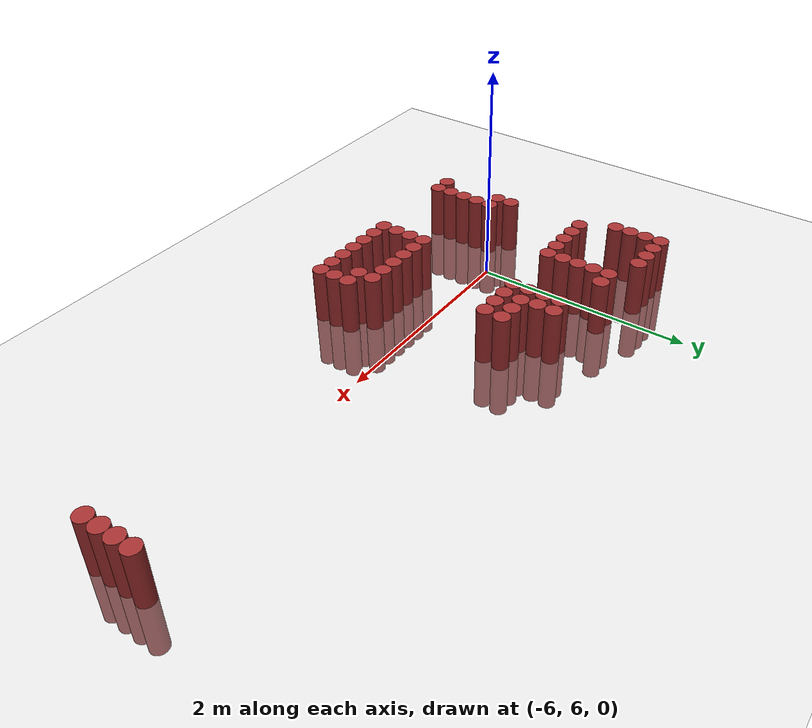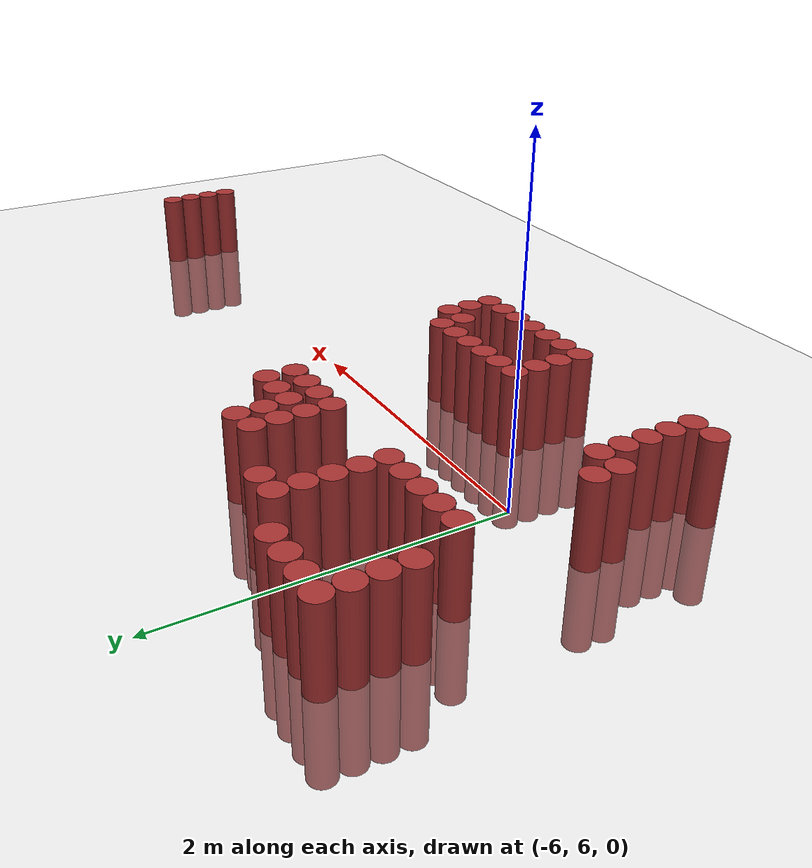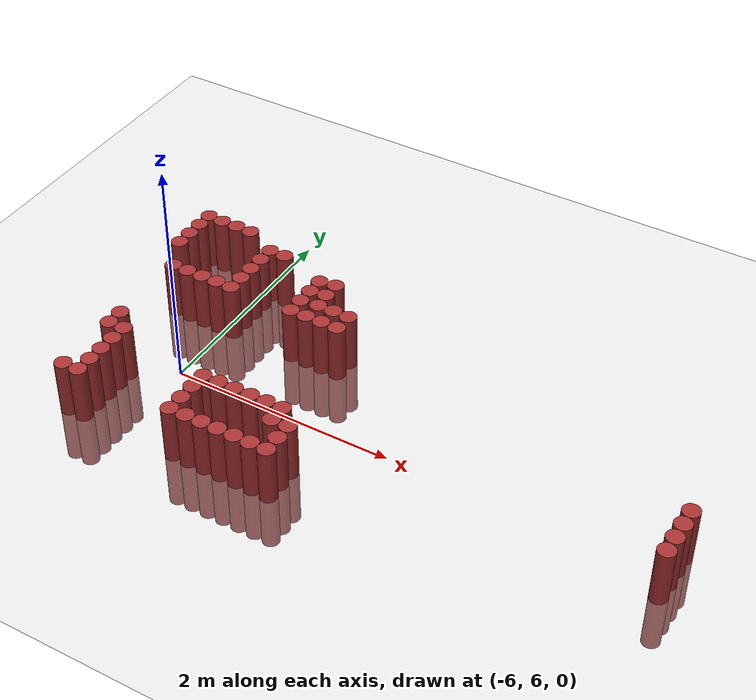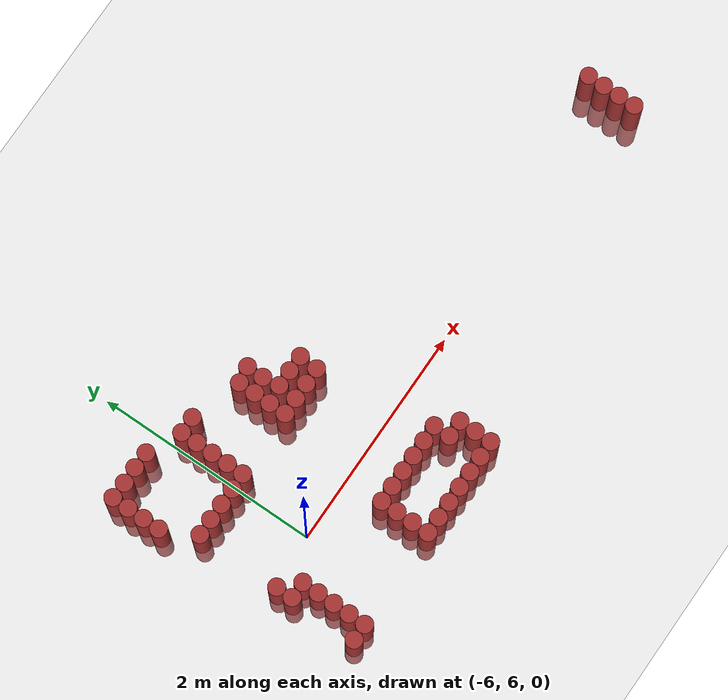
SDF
<sdf version="1.6">
 <world name="default">
  <model name="ground_plane">
   <static>1</static>
   <link name="link">
    <collision name="collision">
     <geometry><plane><normal>0 0 1</normal><size>100 100</size></plane></geometry>
     <surface><friction><ode><mu>100</mu><mu2>50</mu2></ode></friction></surface>
    </collision>
    <visual name="visual">
     <cast_shadows>0</cast_shadows>
     <geometry><plane><normal>0 0 1</normal><size>100 100</size></plane></geometry>
     <material>
      <script><uri>file://media/materials/scripts/gazebo.material</uri><name>Gazebo/Grey</name></script>
     </material>
    </visual>
   </link>
  </model>
  <model name="unit_cylinder_813">
   <static>1</static>
   <pose>-6.675 6.975 0 0 -0 0</pose>
   <link name="link">
    <inertial>
     <mass>1</mass>
     <inertia><ixx>0.145833</ixx><ixy>0</ixy><ixz>0</ixz><iyy>0.145833</iyy><iyz>0</iyz><izz>0.125</izz></inertia>
    </inertial>
    <collision name="collision">
     <geometry><cylinder><radius>0.075</radius><length>1</length></cylinder></geometry>
    </collision>
    <visual name="visual">
     <geometry><cylinder><radius>0.075</radius><length>1</length></cylinder></geometry>
     <material><ambient>0.648 0.192 0.192 1</ambient><diffuse>0.648 0.192 0.192 1</diffuse></material>
     <material>
      <script><name>Gazebo/Grey</name><uri>file://media/materials/scripts/gazebo.material</uri></script>
     </material>
    </visual>
   </link>
  </model>
  <model name="unit_cylinder_814">
   <static>1</static>
   <pose>-6.675 7.125 0 0 -0 0</pose>
   <link name="link">
    <inertial>
     <mass>1</mass>
     <inertia><ixx>0.145833</ixx><ixy>0</ixy><ixz>0</ixz><iyy>0.145833</iyy><iyz>0</iyz><izz>0.125</izz></inertia>
    </inertial>
    <collision name="collision">
     <geometry><cylinder><radius>0.075</radius><length>1</length></cylinder></geometry>
    </collision>
    <visual name="visual">
     <geometry><cylinder><radius>0.075</radius><length>1</length></cylinder></geometry>
     <material><ambient>0.648 0.192 0.192 1</ambient><diffuse>0.648 0.192 0.192 1</diffuse></material>
     <material>
      <script><name>Gazebo/Grey</name><uri>file://media/materials/scripts/gazebo.material</uri></script>
     </material>
    </visual>
   </link>
  </model>
  <model name="unit_cylinder_815">
   <static>1</static>
   <pose>-6.675 7.275 0 0 -0 0</pose>
   <link name="link">
    <inertial>
     <mass>1</mass>
     <inertia><ixx>0.145833</ixx><ixy>0</ixy><ixz>0</ixz><iyy>0.145833</iyy><iyz>0</iyz><izz>0.125</izz></inertia>
    </inertial>
    <collision name="collision">
     <geometry><cylinder><radius>0.075</radius><length>1</length></cylinder></geometry>
    </collision>
    <visual name="visual">
     <geometry><cylinder><radius>0.075</radius><length>1</length></cylinder></geometry>
     <material><ambient>0.648 0.192 0.192 1</ambient><diffuse>0.648 0.192 0.192 1</diffuse></material>
     <material>
      <script><name>Gazebo/Grey</name><uri>file://media/materials/scripts/gazebo.material</uri></script>
     </material>
    </visual>
   </link>
  </model>
  <model name="unit_cylinder_816">
   <static>1</static>
   <pose>-6.675 7.425 0 0 -0 0</pose>
   <link name="link">
    <inertial>
     <mass>1</mass>
     <inertia><ixx>0.145833</ixx><ixy>0</ixy><ixz>0</ixz><iyy>0.145833</iyy><iyz>0</iyz><izz>0.125</izz></inertia>
    </inertial>
    <collision name="collision">
     <geometry><cylinder><radius>0.075</radius><length>1</length></cylinder></geometry>
    </collision>
    <visual name="visual">
     <geometry><cylinder><radius>0.075</radius><length>1</length></cylinder></geometry>
     <material><ambient>0.648 0.192 0.192 1</ambient><diffuse>0.648 0.192 0.192 1</diffuse></material>
     <material>
      <script><name>Gazebo/Grey</name><uri>file://media/materials/scripts/gazebo.material</uri></script>
     </material>
    </visual>
   </link>
  </model>
  <model name="unit_cylinder_835">
   <static>1</static>
   <pose>-6.525 5.175 0 0 -0 0</pose>
   <link name="link">
    <inertial>
     <mass>1</mass>
     <inertia><ixx>0.145833</ixx><ixy>0</ixy><ixz>0</ixz><iyy>0.145833</iyy><iyz>0</iyz><izz>0.125</izz></inertia>
    </inertial>
    <collision name="collision">
     <geometry><cylinder><radius>0.075</radius><length>1</length></cylinder></geometry>
    </collision>
    <visual name="visual">
     <geometry><cylinder><radius>0.075</radius><length>1</length></cylinder></geometry>
     <material><ambient>0.648 0.192 0.192 1</ambient><diffuse>0.648 0.192 0.192 1</diffuse></material>
     <material>
      <script><name>Gazebo/Grey</name><uri>file://media/materials/scripts/gazebo.material</uri></script>
     </material>
    </visual>
   </link>
  </model>
  <model name="unit_cylinder_836">
   <static>1</static>
   <pose>-6.525 5.775 0 0 -0 0</pose>
   <link name="link">
    <inertial>
     <mass>1</mass>
     <inertia><ixx>0.145833</ixx><ixy>0</ixy><ixz>0</ixz><iyy>0.145833</iyy><iyz>0</iyz><izz>0.125</izz></inertia>
    </inertial>
    <collision name="collision">
     <geometry><cylinder><radius>0.075</radius><length>1</length></cylinder></geometry>
    </collision>
    <visual name="visual">
     <geometry><cylinder><radius>0.075</radius><length>1</length></cylinder></geometry>
     <material><ambient>0.648 0.192 0.192 1</ambient><diffuse>0.648 0.192 0.192 1</diffuse></material>
     <material>
      <script><name>Gazebo/Grey</name><uri>file://media/materials/scripts/gazebo.material</uri></script>
     </material>
    </visual>
   </link>
  </model>
  <model name="unit_cylinder_837">
   <static>1</static>
   <pose>-6.525 5.925 0 0 -0 0</pose>
   <link name="link">
    <inertial>
     <mass>1</mass>
     <inertia><ixx>0.145833</ixx><ixy>0</ixy><ixz>0</ixz><iyy>0.145833</iyy><iyz>0</iyz><izz>0.125</izz></inertia>
    </inertial>
    <collision name="collision">
     <geometry><cylinder><radius>0.075</radius><length>1</length></cylinder></geometry>
    </collision>
    <visual name="visual">
     <geometry><cylinder><radius>0.075</radius><length>1</length></cylinder></geometry>
     <material><ambient>0.648 0.192 0.192 1</ambient><diffuse>0.648 0.192 0.192 1</diffuse></material>
     <material>
      <script><name>Gazebo/Grey</name><uri>file://media/materials/scripts/gazebo.material</uri></script>
     </material>
    </visual>
   </link>
  </model>
  <model name="unit_cylinder_838">
   <static>1</static>
   <pose>-6.525 6.675 0 0 -0 0</pose>
   <link name="link">
    <inertial>
     <mass>1</mass>
     <inertia><ixx>0.145833</ixx><ixy>0</ixy><ixz>0</ixz><iyy>0.145833</iyy><iyz>0</iyz><izz>0.125</izz></inertia>
    </inertial>
    <collision name="collision">
     <geometry><cylinder><radius>0.075</radius><length>1</length></cylinder></geometry>
    </collision>
    <visual name="visual">
     <geometry><cylinder><radius>0.075</radius><length>1</length></cylinder></geometry>
     <material><ambient>0.648 0.192 0.192 1</ambient><diffuse>0.648 0.192 0.192 1</diffuse></material>
     <material>
      <script><name>Gazebo/Grey</name><uri>file://media/materials/scripts/gazebo.material</uri></script>
     </material>
    </visual>
   </link>
  </model>
  <model name="unit_cylinder_858">
   <static>1</static>
   <pose>-6.375 5.175 0 0 -0 0</pose>
   <link name="link">
    <inertial>
     <mass>1</mass>
     <inertia><ixx>0.145833</ixx><ixy>0</ixy><ixz>0</ixz><iyy>0.145833</iyy><iyz>0</iyz><izz>0.125</izz></inertia>
    </inertial>
    <collision name="collision">
     <geometry><cylinder><radius>0.075</radius><length>1</length></cylinder></geometry>
    </collision>
    <visual name="visual">
     <geometry><cylinder><radius>0.075</radius><length>1</length></cylinder></geometry>
     <material><ambient>0.648 0.192 0.192 1</ambient><diffuse>0.648 0.192 0.192 1</diffuse></material>
     <material>
      <script><name>Gazebo/Grey</name><uri>file://media/materials/scripts/gazebo.material</uri></script>
     </material>
    </visual>
   </link>
  </model>
  <model name="unit_cylinder_859">
   <static>1</static>
   <pose>-6.375 5.325 0 0 -0 0</pose>
   <link name="link">
    <inertial>
     <mass>1</mass>
     <inertia><ixx>0.145833</ixx><ixy>0</ixy><ixz>0</ixz><iyy>0.145833</iyy><iyz>0</iyz><izz>0.125</izz></inertia>
    </inertial>
    <collision name="collision">
     <geometry><cylinder><radius>0.075</radius><length>1</length></cylinder></geometry>
    </collision>
    <visual name="visual">
     <geometry><cylinder><radius>0.075</radius><length>1</length></cylinder></geometry>
     <material><ambient>0.648 0.192 0.192 1</ambient><diffuse>0.648 0.192 0.192 1</diffuse></material>
     <material>
      <script><name>Gazebo/Grey</name><uri>file://media/materials/scripts/gazebo.material</uri></script>
     </material>
    </visual>
   </link>
  </model>
  <model name="unit_cylinder_860">
   <static>1</static>
   <pose>-6.375 5.475 0 0 -0 0</pose>
   <link name="link">
    <inertial>
     <mass>1</mass>
     <inertia><ixx>0.145833</ixx><ixy>0</ixy><ixz>0</ixz><iyy>0.145833</iyy><iyz>0</iyz><izz>0.125</izz></inertia>
    </inertial>
    <collision name="collision">
     <geometry><cylinder><radius>0.075</radius><length>1</length></cylinder></geometry>
    </collision>
    <visual name="visual">
     <geometry><cylinder><radius>0.075</radius><length>1</length></cylinder></geometry>
     <material><ambient>0.648 0.192 0.192 1</ambient><diffuse>0.648 0.192 0.192 1</diffuse></material>
     <material>
      <script><name>Gazebo/Grey</name><uri>file://media/materials/scripts/gazebo.material</uri></script>
     </material>
    </visual>
   </link>
  </model>
  <model name="unit_cylinder_861">
   <static>1</static>
   <pose>-6.375 5.625 0 0 -0 0</pose>
   <link name="link">
    <inertial>
     <mass>1</mass>
     <inertia><ixx>0.145833</ixx><ixy>0</ixy><ixz>0</ixz><iyy>0.145833</iyy><iyz>0</iyz><izz>0.125</izz></inertia>
    </inertial>
    <collision name="collision">
     <geometry><cylinder><radius>0.075</radius><length>1</length></cylinder></geometry>
    </collision>
    <visual name="visual">
     <geometry><cylinder><radius>0.075</radius><length>1</length></cylinder></geometry>
     <material><ambient>0.648 0.192 0.192 1</ambient><diffuse>0.648 0.192 0.192 1</diffuse></material>
     <material>
      <script><name>Gazebo/Grey</name><uri>file://media/materials/scripts/gazebo.material</uri></script>
     </material>
    </visual>
   </link>
  </model>
  <model name="unit_cylinder_862">
   <static>1</static>
   <pose>-6.375 5.775 0 0 -0 0</pose>
   <link name="link">
    <inertial>
     <mass>1</mass>
     <inertia><ixx>0.145833</ixx><ixy>0</ixy><ixz>0</ixz><iyy>0.145833</iyy><iyz>0</iyz><izz>0.125</izz></inertia>
    </inertial>
    <collision name="collision">
     <geometry><cylinder><radius>0.075</radius><length>1</length></cylinder></geometry>
    </collision>
    <visual name="visual">
     <geometry><cylinder><radius>0.075</radius><length>1</length></cylinder></geometry>
     <material><ambient>0.648 0.192 0.192 1</ambient><diffuse>0.648 0.192 0.192 1</diffuse></material>
     <material>
      <script><name>Gazebo/Grey</name><uri>file://media/materials/scripts/gazebo.material</uri></script>
     </material>
    </visual>
   </link>
  </model>
  <model name="unit_cylinder_863">
   <static>1</static>
   <pose>-6.375 6.675 0 0 -0 0</pose>
   <link name="link">
    <inertial>
     <mass>1</mass>
     <inertia><ixx>0.145833</ixx><ixy>0</ixy><ixz>0</ixz><iyy>0.145833</iyy><iyz>0</iyz><izz>0.125</izz></inertia>
    </inertial>
    <collision name="collision">
     <geometry><cylinder><radius>0.075</radius><length>1</length></cylinder></geometry>
    </collision>
    <visual name="visual">
     <geometry><cylinder><radius>0.075</radius><length>1</length></cylinder></geometry>
     <material><ambient>0.648 0.192 0.192 1</ambient><diffuse>0.648 0.192 0.192 1</diffuse></material>
     <material>
      <script><name>Gazebo/Grey</name><uri>file://media/materials/scripts/gazebo.material</uri></script>
     </material>
    </visual>
   </link>
  </model>
  <model name="unit_cylinder_879">
   <static>1</static>
   <pose>-6.225 6.675 0 0 -0 0</pose>
   <link name="link">
    <inertial>
     <mass>1</mass>
     <inertia><ixx>0.145833</ixx><ixy>0</ixy><ixz>0</ixz><iyy>0.145833</iyy><iyz>0</iyz><izz>0.125</izz></inertia>
    </inertial>
    <collision name="collision">
     <geometry><cylinder><radius>0.075</radius><length>1</length></cylinder></geometry>
    </collision>
    <visual name="visual">
     <geometry><cylinder><radius>0.075</radius><length>1</length></cylinder></geometry>
     <material><ambient>0.648 0.192 0.192 1</ambient><diffuse>0.648 0.192 0.192 1</diffuse></material>
     <material>
      <script><name>Gazebo/Grey</name><uri>file://media/materials/scripts/gazebo.material</uri></script>
     </material>
    </visual>
   </link>
  </model>
  <model name="unit_cylinder_889">
   <static>1</static>
   <pose>-6.075 6.675 0 0 -0 0</pose>
   <link name="link">
    <inertial>
     <mass>1</mass>
     <inertia><ixx>0.145833</ixx><ixy>0</ixy><ixz>0</ixz><iyy>0.145833</iyy><iyz>0</iyz><izz>0.125</izz></inertia>
    </inertial>
    <collision name="collision">
     <geometry><cylinder><radius>0.075</radius><length>1</length></cylinder></geometry>
    </collision>
    <visual name="visual">
     <geometry><cylinder><radius>0.075</radius><length>1</length></cylinder></geometry>
     <material><ambient>0.648 0.192 0.192 1</ambient><diffuse>0.648 0.192 0.192 1</diffuse></material>
     <material>
      <script><name>Gazebo/Grey</name><uri>file://media/materials/scripts/gazebo.material</uri></script>
     </material>
    </visual>
   </link>
  </model>
  <model name="unit_cylinder_909">
   <static>1</static>
   <pose>-5.925 6.675 0 0 -0 0</pose>
   <link name="link">
    <inertial>
     <mass>1</mass>
     <inertia><ixx>0.145833</ixx><ixy>0</ixy><ixz>0</ixz><iyy>0.145833</iyy><iyz>0</iyz><izz>0.125</izz></inertia>
    </inertial>
    <collision name="collision">
     <geometry><cylinder><radius>0.075</radius><length>1</length></cylinder></geometry>
    </collision>
    <visual name="visual">
     <geometry><cylinder><radius>0.075</radius><length>1</length></cylinder></geometry>
     <material><ambient>0.648 0.192 0.192 1</ambient><diffuse>0.648 0.192 0.192 1</diffuse></material>
     <material>
      <script><name>Gazebo/Grey</name><uri>file://media/materials/scripts/gazebo.material</uri></script>
     </material>
    </visual>
   </link>
  </model>
  <model name="unit_cylinder_910">
   <static>1</static>
   <pose>-5.925 6.825 0 0 -0 0</pose>
   <link name="link">
    <inertial>
     <mass>1</mass>
     <inertia><ixx>0.145833</ixx><ixy>0</ixy><ixz>0</ixz><iyy>0.145833</iyy><iyz>0</iyz><izz>0.125</izz></inertia>
    </inertial>
    <collision name="collision">
     <geometry><cylinder><radius>0.075</radius><length>1</length></cylinder></geometry>
    </collision>
    <visual name="visual">
     <geometry><cylinder><radius>0.075</radius><length>1</length></cylinder></geometry>
     <material><ambient>0.648 0.192 0.192 1</ambient><diffuse>0.648 0.192 0.192 1</diffuse></material>
     <material>
      <script><name>Gazebo/Grey</name><uri>file://media/materials/scripts/gazebo.material</uri></script>
     </material>
    </visual>
   </link>
  </model>
  <model name="unit_cylinder_911">
   <static>1</static>
   <pose>-5.925 6.975 0 0 -0 0</pose>
   <link name="link">
    <inertial>
     <mass>1</mass>
     <inertia><ixx>0.145833</ixx><ixy>0</ixy><ixz>0</ixz><iyy>0.145833</iyy><iyz>0</iyz><izz>0.125</izz></inertia>
    </inertial>
    <collision name="collision">
     <geometry><cylinder><radius>0.075</radius><length>1</length></cylinder></geometry>
    </collision>
    <visual name="visual">
     <geometry><cylinder><radius>0.075</radius><length>1</length></cylinder></geometry>
     <material><ambient>0.648 0.192 0.192 1</ambient><diffuse>0.648 0.192 0.192 1</diffuse></material>
     <material>
      <script><name>Gazebo/Grey</name><uri>file://media/materials/scripts/gazebo.material</uri></script>
     </material>
    </visual>
   </link>
  </model>
  <model name="unit_cylinder_912">
   <static>1</static>
   <pose>-5.925 7.125 0 0 -0 0</pose>
   <link name="link">
    <inertial>
     <mass>1</mass>
     <inertia><ixx>0.145833</ixx><ixy>0</ixy><ixz>0</ixz><iyy>0.145833</iyy><iyz>0</iyz><izz>0.125</izz></inertia>
    </inertial>
    <collision name="collision">
     <geometry><cylinder><radius>0.075</radius><length>1</length></cylinder></geometry>
    </collision>
    <visual name="visual">
     <geometry><cylinder><radius>0.075</radius><length>1</length></cylinder></geometry>
     <material><ambient>0.648 0.192 0.192 1</ambient><diffuse>0.648 0.192 0.192 1</diffuse></material>
     <material>
      <script><name>Gazebo/Grey</name><uri>file://media/materials/scripts/gazebo.material</uri></script>
     </material>
    </visual>
   </link>
  </model>
  <model name="unit_cylinder_913">
   <static>1</static>
   <pose>-5.925 7.275 0 0 -0 0</pose>
   <link name="link">
    <inertial>
     <mass>1</mass>
     <inertia><ixx>0.145833</ixx><ixy>0</ixy><ixz>0</ixz><iyy>0.145833</iyy><iyz>0</iyz><izz>0.125</izz></inertia>
    </inertial>
    <collision name="collision">
     <geometry><cylinder><radius>0.075</radius><length>1</length></cylinder></geometry>
    </collision>
    <visual name="visual">
     <geometry><cylinder><radius>0.075</radius><length>1</length></cylinder></geometry>
     <material><ambient>0.648 0.192 0.192 1</ambient><diffuse>0.648 0.192 0.192 1</diffuse></material>
     <material>
      <script><name>Gazebo/Grey</name><uri>file://media/materials/scripts/gazebo.material</uri></script>
     </material>
    </visual>
   </link>
  </model>
  <model name="unit_cylinder_930">
   <static>1</static>
   <pose>-5.775 7.275 0 0 -0 0</pose>
   <link name="link">
    <inertial>
     <mass>1</mass>
     <inertia><ixx>0.145833</ixx><ixy>0</ixy><ixz>0</ixz><iyy>0.145833</iyy><iyz>0</iyz><izz>0.125</izz></inertia>
    </inertial>
    <collision name="collision">
     <geometry><cylinder><radius>0.075</radius><length>1</length></cylinder></geometry>
    </collision>
    <visual name="visual">
     <geometry><cylinder><radius>0.075</radius><length>1</length></cylinder></geometry>
     <material><ambient>0.648 0.192 0.192 1</ambient><diffuse>0.648 0.192 0.192 1</diffuse></material>
     <material>
      <script><name>Gazebo/Grey</name><uri>file://media/materials/scripts/gazebo.material</uri></script>
     </material>
    </visual>
   </link>
  </model>
  <model name="unit_cylinder_963">
   <static>1</static>
   <pose>-5.475 5.175 0 0 -0 0</pose>
   <link name="link">
    <inertial>
     <mass>1</mass>
     <inertia><ixx>0.145833</ixx><ixy>0</ixy><ixz>0</ixz><iyy>0.145833</iyy><iyz>0</iyz><izz>0.125</izz></inertia>
    </inertial>
    <collision name="collision">
     <geometry><cylinder><radius>0.075</radius><length>1</length></cylinder></geometry>
    </collision>
    <visual name="visual">
     <geometry><cylinder><radius>0.075</radius><length>1</length></cylinder></geometry>
     <material><ambient>0.648 0.192 0.192 1</ambient><diffuse>0.648 0.192 0.192 1</diffuse></material>
     <material>
      <script><name>Gazebo/Grey</name><uri>file://media/materials/scripts/gazebo.material</uri></script>
     </material>
    </visual>
   </link>
  </model>
  <model name="unit_cylinder_964">
   <static>1</static>
   <pose>-5.475 5.325 0 0 -0 0</pose>
   <link name="link">
    <inertial>
     <mass>1</mass>
     <inertia><ixx>0.145833</ixx><ixy>0</ixy><ixz>0</ixz><iyy>0.145833</iyy><iyz>0</iyz><izz>0.125</izz></inertia>
    </inertial>
    <collision name="collision">
     <geometry><cylinder><radius>0.075</radius><length>1</length></cylinder></geometry>
    </collision>
    <visual name="visual">
     <geometry><cylinder><radius>0.075</radius><length>1</length></cylinder></geometry>
     <material><ambient>0.648 0.192 0.192 1</ambient><diffuse>0.648 0.192 0.192 1</diffuse></material>
     <material>
      <script><name>Gazebo/Grey</name><uri>file://media/materials/scripts/gazebo.material</uri></script>
     </material>
    </visual>
   </link>
  </model>
  <model name="unit_cylinder_965">
   <static>1</static>
   <pose>-5.475 5.475 0 0 -0 0</pose>
   <link name="link">
    <inertial>
     <mass>1</mass>
     <inertia><ixx>0.145833</ixx><ixy>0</ixy><ixz>0</ixz><iyy>0.145833</iyy><iyz>0</iyz><izz>0.125</izz></inertia>
    </inertial>
    <collision name="collision">
     <geometry><cylinder><radius>0.075</radius><length>1</length></cylinder></geometry>
    </collision>
    <visual name="visual">
     <geometry><cylinder><radius>0.075</radius><length>1</length></cylinder></geometry>
     <material><ambient>0.648 0.192 0.192 1</ambient><diffuse>0.648 0.192 0.192 1</diffuse></material>
     <material>
      <script><name>Gazebo/Grey</name><uri>file://media/materials/scripts/gazebo.material</uri></script>
     </material>
    </visual>
   </link>
  </model>
  <model name="unit_cylinder_966">
   <static>1</static>
   <pose>-5.475 5.625 0 0 -0 0</pose>
   <link name="link">
    <inertial>
     <mass>1</mass>
     <inertia><ixx>0.145833</ixx><ixy>0</ixy><ixz>0</ixz><iyy>0.145833</iyy><iyz>0</iyz><izz>0.125</izz></inertia>
    </inertial>
    <collision name="collision">
     <geometry><cylinder><radius>0.075</radius><length>1</length></cylinder></geometry>
    </collision>
    <visual name="visual">
     <geometry><cylinder><radius>0.075</radius><length>1</length></cylinder></geometry>
     <material><ambient>0.648 0.192 0.192 1</ambient><diffuse>0.648 0.192 0.192 1</diffuse></material>
     <material>
      <script><name>Gazebo/Grey</name><uri>file://media/materials/scripts/gazebo.material</uri></script>
     </material>
    </visual>
   </link>
  </model>
  <model name="unit_cylinder_972">
   <static>1</static>
   <pose>-5.325 5.175 0 0 -0 0</pose>
   <link name="link">
    <inertial>
     <mass>1</mass>
     <inertia><ixx>0.145833</ixx><ixy>0</ixy><ixz>0</ixz><iyy>0.145833</iyy><iyz>0</iyz><izz>0.125</izz></inertia>
    </inertial>
    <collision name="collision">
     <geometry><cylinder><radius>0.075</radius><length>1</length></cylinder></geometry>
    </collision>
    <visual name="visual">
     <geometry><cylinder><radius>0.075</radius><length>1</length></cylinder></geometry>
     <material><ambient>0.648 0.192 0.192 1</ambient><diffuse>0.648 0.192 0.192 1</diffuse></material>
     <material>
      <script><name>Gazebo/Grey</name><uri>file://media/materials/scripts/gazebo.material</uri></script>
     </material>
    </visual>
   </link>
  </model>
  <model name="unit_cylinder_973">
   <static>1</static>
   <pose>-5.325 5.625 0 0 -0 0</pose>
   <link name="link">
    <inertial>
     <mass>1</mass>
     <inertia><ixx>0.145833</ixx><ixy>0</ixy><ixz>0</ixz><iyy>0.145833</iyy><iyz>0</iyz><izz>0.125</izz></inertia>
    </inertial>
    <collision name="collision">
     <geometry><cylinder><radius>0.075</radius><length>1</length></cylinder></geometry>
    </collision>
    <visual name="visual">
     <geometry><cylinder><radius>0.075</radius><length>1</length></cylinder></geometry>
     <material><ambient>0.648 0.192 0.192 1</ambient><diffuse>0.648 0.192 0.192 1</diffuse></material>
     <material>
      <script><name>Gazebo/Grey</name><uri>file://media/materials/scripts/gazebo.material</uri></script>
     </material>
    </visual>
   </link>
  </model>
  <model name="unit_cylinder_974">
   <static>1</static>
   <pose>-5.325 6.675 0 0 -0 0</pose>
   <link name="link">
    <inertial>
     <mass>1</mass>
     <inertia><ixx>0.145833</ixx><ixy>0</ixy><ixz>0</ixz><iyy>0.145833</iyy><iyz>0</iyz><izz>0.125</izz></inertia>
    </inertial>
    <collision name="collision">
     <geometry><cylinder><radius>0.075</radius><length>1</length></cylinder></geometry>
    </collision>
    <visual name="visual">
     <geometry><cylinder><radius>0.075</radius><length>1</length></cylinder></geometry>
     <material><ambient>0.648 0.192 0.192 1</ambient><diffuse>0.648 0.192 0.192 1</diffuse></material>
     <material>
      <script><name>Gazebo/Grey</name><uri>file://media/materials/scripts/gazebo.material</uri></script>
     </material>
    </visual>
   </link>
  </model>
  <model name="unit_cylinder_975">
   <static>1</static>
   <pose>-5.325 6.825 0 0 -0 0</pose>
   <link name="link">
    <inertial>
     <mass>1</mass>
     <inertia><ixx>0.145833</ixx><ixy>0</ixy><ixz>0</ixz><iyy>0.145833</iyy><iyz>0</iyz><izz>0.125</izz></inertia>
    </inertial>
    <collision name="collision">
     <geometry><cylinder><radius>0.075</radius><length>1</length></cylinder></geometry>
    </collision>
    <visual name="visual">
     <geometry><cylinder><radius>0.075</radius><length>1</length></cylinder></geometry>
     <material><ambient>0.648 0.192 0.192 1</ambient><diffuse>0.648 0.192 0.192 1</diffuse></material>
     <material>
      <script><name>Gazebo/Grey</name><uri>file://media/materials/scripts/gazebo.material</uri></script>
     </material>
    </visual>
   </link>
  </model>
  <model name="unit_cylinder_976">
   <static>1</static>
   <pose>-5.325 6.975 0 0 -0 0</pose>
   <link name="link">
    <inertial>
     <mass>1</mass>
     <inertia><ixx>0.145833</ixx><ixy>0</ixy><ixz>0</ixz><iyy>0.145833</iyy><iyz>0</iyz><izz>0.125</izz></inertia>
    </inertial>
    <collision name="collision">
     <geometry><cylinder><radius>0.075</radius><length>1</length></cylinder></geometry>
    </collision>
    <visual name="visual">
     <geometry><cylinder><radius>0.075</radius><length>1</length></cylinder></geometry>
     <material><ambient>0.648 0.192 0.192 1</ambient><diffuse>0.648 0.192 0.192 1</diffuse></material>
     <material>
      <script><name>Gazebo/Grey</name><uri>file://media/materials/scripts/gazebo.material</uri></script>
     </material>
    </visual>
   </link>
  </model>
  <model name="unit_cylinder_977">
   <static>1</static>
   <pose>-5.325 7.125 0 0 -0 0</pose>
   <link name="link">
    <inertial>
     <mass>1</mass>
     <inertia><ixx>0.145833</ixx><ixy>0</ixy><ixz>0</ixz><iyy>0.145833</iyy><iyz>0</iyz><izz>0.125</izz></inertia>
    </inertial>
    <collision name="collision">
     <geometry><cylinder><radius>0.075</radius><length>1</length></cylinder></geometry>
    </collision>
    <visual name="visual">
     <geometry><cylinder><radius>0.075</radius><length>1</length></cylinder></geometry>
     <material><ambient>0.648 0.192 0.192 1</ambient><diffuse>0.648 0.192 0.192 1</diffuse></material>
     <material>
      <script><name>Gazebo/Grey</name><uri>file://media/materials/scripts/gazebo.material</uri></script>
     </material>
    </visual>
   </link>
  </model>
  <model name="unit_cylinder_991">
   <static>1</static>
   <pose>-5.175 5.175 0 0 -0 0</pose>
   <link name="link">
    <inertial>
     <mass>1</mass>
     <inertia><ixx>0.145833</ixx><ixy>0</ixy><ixz>0</ixz><iyy>0.145833</iyy><iyz>0</iyz><izz>0.125</izz></inertia>
    </inertial>
    <collision name="collision">
     <geometry><cylinder><radius>0.075</radius><length>1</length></cylinder></geometry>
    </collision>
    <visual name="visual">
     <geometry><cylinder><radius>0.075</radius><length>1</length></cylinder></geometry>
     <material><ambient>0.648 0.192 0.192 1</ambient><diffuse>0.648 0.192 0.192 1</diffuse></material>
     <material>
      <script><name>Gazebo/Grey</name><uri>file://media/materials/scripts/gazebo.material</uri></script>
     </material>
    </visual>
   </link>
  </model>
  <model name="unit_cylinder_992">
   <static>1</static>
   <pose>-5.175 5.625 0 0 -0 0</pose>
   <link name="link">
    <inertial>
     <mass>1</mass>
     <inertia><ixx>0.145833</ixx><ixy>0</ixy><ixz>0</ixz><iyy>0.145833</iyy><iyz>0</iyz><izz>0.125</izz></inertia>
    </inertial>
    <collision name="collision">
     <geometry><cylinder><radius>0.075</radius><length>1</length></cylinder></geometry>
    </collision>
    <visual name="visual">
     <geometry><cylinder><radius>0.075</radius><length>1</length></cylinder></geometry>
     <material><ambient>0.648 0.192 0.192 1</ambient><diffuse>0.648 0.192 0.192 1</diffuse></material>
     <material>
      <script><name>Gazebo/Grey</name><uri>file://media/materials/scripts/gazebo.material</uri></script>
     </material>
    </visual>
   </link>
  </model>
  <model name="unit_cylinder_993">
   <static>1</static>
   <pose>-5.175 6.675 0 0 -0 0</pose>
   <link name="link">
    <inertial>
     <mass>1</mass>
     <inertia><ixx>0.145833</ixx><ixy>0</ixy><ixz>0</ixz><iyy>0.145833</iyy><iyz>0</iyz><izz>0.125</izz></inertia>
    </inertial>
    <collision name="collision">
     <geometry><cylinder><radius>0.075</radius><length>1</length></cylinder></geometry>
    </collision>
    <visual name="visual">
     <geometry><cylinder><radius>0.075</radius><length>1</length></cylinder></geometry>
     <material><ambient>0.648 0.192 0.192 1</ambient><diffuse>0.648 0.192 0.192 1</diffuse></material>
     <material>
      <script><name>Gazebo/Grey</name><uri>file://media/materials/scripts/gazebo.material</uri></script>
     </material>
    </visual>
   </link>
  </model>
  <model name="unit_cylinder_1005">
   <static>1</static>
   <pose>-5.025 5.175 0 0 -0 0</pose>
   <link name="link">
    <inertial>
     <mass>1</mass>
     <inertia><ixx>0.145833</ixx><ixy>0</ixy><ixz>0</ixz><iyy>0.145833</iyy><iyz>0</iyz><izz>0.125</izz></inertia>
    </inertial>
    <collision name="collision">
     <geometry><cylinder><radius>0.075</radius><length>1</length></cylinder></geometry>
    </collision>
    <visual name="visual">
     <geometry><cylinder><radius>0.075</radius><length>1</length></cylinder></geometry>
     <material><ambient>0.648 0.192 0.192 1</ambient><diffuse>0.648 0.192 0.192 1</diffuse></material>
     <material>
      <script><name>Gazebo/Grey</name><uri>file://media/materials/scripts/gazebo.material</uri></script>
     </material>
    </visual>
   </link>
  </model>
  <model name="unit_cylinder_1006">
   <static>1</static>
   <pose>-5.025 5.625 0 0 -0 0</pose>
   <link name="link">
    <inertial>
     <mass>1</mass>
     <inertia><ixx>0.145833</ixx><ixy>0</ixy><ixz>0</ixz><iyy>0.145833</iyy><iyz>0</iyz><izz>0.125</izz></inertia>
    </inertial>
    <collision name="collision">
     <geometry><cylinder><radius>0.075</radius><length>1</length></cylinder></geometry>
    </collision>
    <visual name="visual">
     <geometry><cylinder><radius>0.075</radius><length>1</length></cylinder></geometry>
     <material><ambient>0.648 0.192 0.192 1</ambient><diffuse>0.648 0.192 0.192 1</diffuse></material>
     <material>
      <script><name>Gazebo/Grey</name><uri>file://media/materials/scripts/gazebo.material</uri></script>
     </material>
    </visual>
   </link>
  </model>
  <model name="unit_cylinder_1007">
   <static>1</static>
   <pose>-5.025 6.675 0 0 -0 0</pose>
   <link name="link">
    <inertial>
     <mass>1</mass>
     <inertia><ixx>0.145833</ixx><ixy>0</ixy><ixz>0</ixz><iyy>0.145833</iyy><iyz>0</iyz><izz>0.125</izz></inertia>
    </inertial>
    <collision name="collision">
     <geometry><cylinder><radius>0.075</radius><length>1</length></cylinder></geometry>
    </collision>
    <visual name="visual">
     <geometry><cylinder><radius>0.075</radius><length>1</length></cylinder></geometry>
     <material><ambient>0.648 0.192 0.192 1</ambient><diffuse>0.648 0.192 0.192 1</diffuse></material>
     <material>
      <script><name>Gazebo/Grey</name><uri>file://media/materials/scripts/gazebo.material</uri></script>
     </material>
    </visual>
   </link>
  </model>
  <model name="unit_cylinder_1030">
   <static>1</static>
   <pose>-4.875 5.175 0 0 -0 0</pose>
   <link name="link">
    <inertial>
     <mass>1</mass>
     <inertia><ixx>0.145833</ixx><ixy>0</ixy><ixz>0</ixz><iyy>0.145833</iyy><iyz>0</iyz><izz>0.125</izz></inertia>
    </inertial>
    <collision name="collision">
     <geometry><cylinder><radius>0.075</radius><length>1</length></cylinder></geometry>
    </collision>
    <visual name="visual">
     <geometry><cylinder><radius>0.075</radius><length>1</length></cylinder></geometry>
     <material><ambient>0.648 0.192 0.192 1</ambient><diffuse>0.648 0.192 0.192 1</diffuse></material>
     <material>
      <script><name>Gazebo/Grey</name><uri>file://media/materials/scripts/gazebo.material</uri></script>
     </material>
    </visual>
   </link>
  </model>
  <model name="unit_cylinder_1031">
   <static>1</static>
   <pose>-4.875 5.625 0 0 -0 0</pose>
   <link name="link">
    <inertial>
     <mass>1</mass>
     <inertia><ixx>0.145833</ixx><ixy>0</ixy><ixz>0</ixz><iyy>0.145833</iyy><iyz>0</iyz><izz>0.125</izz></inertia>
    </inertial>
    <collision name="collision">
     <geometry><cylinder><radius>0.075</radius><length>1</length></cylinder></geometry>
    </collision>
    <visual name="visual">
     <geometry><cylinder><radius>0.075</radius><length>1</length></cylinder></geometry>
     <material><ambient>0.648 0.192 0.192 1</ambient><diffuse>0.648 0.192 0.192 1</diffuse></material>
     <material>
      <script><name>Gazebo/Grey</name><uri>file://media/materials/scripts/gazebo.material</uri></script>
     </material>
    </visual>
   </link>
  </model>
  <model name="unit_cylinder_1032">
   <static>1</static>
   <pose>-4.875 6.675 0 0 -0 0</pose>
   <link name="link">
    <inertial>
     <mass>1</mass>
     <inertia><ixx>0.145833</ixx><ixy>0</ixy><ixz>0</ixz><iyy>0.145833</iyy><iyz>0</iyz><izz>0.125</izz></inertia>
    </inertial>
    <collision name="collision">
     <geometry><cylinder><radius>0.075</radius><length>1</length></cylinder></geometry>
    </collision>
    <visual name="visual">
     <geometry><cylinder><radius>0.075</radius><length>1</length></cylinder></geometry>
     <material><ambient>0.648 0.192 0.192 1</ambient><diffuse>0.648 0.192 0.192 1</diffuse></material>
     <material>
      <script><name>Gazebo/Grey</name><uri>file://media/materials/scripts/gazebo.material</uri></script>
     </material>
    </visual>
   </link>
  </model>
  <model name="unit_cylinder_1043">
   <static>1</static>
   <pose>-4.725 5.175 0 0 -0 0</pose>
   <link name="link">
    <inertial>
     <mass>1</mass>
     <inertia><ixx>0.145833</ixx><ixy>0</ixy><ixz>0</ixz><iyy>0.145833</iyy><iyz>0</iyz><izz>0.125</izz></inertia>
    </inertial>
    <collision name="collision">
     <geometry><cylinder><radius>0.075</radius><length>1</length></cylinder></geometry>
    </collision>
    <visual name="visual">
     <geometry><cylinder><radius>0.075</radius><length>1</length></cylinder></geometry>
     <material><ambient>0.648 0.192 0.192 1</ambient><diffuse>0.648 0.192 0.192 1</diffuse></material>
     <material>
      <script><name>Gazebo/Grey</name><uri>file://media/materials/scripts/gazebo.material</uri></script>
     </material>
    </visual>
   </link>
  </model>
  <model name="unit_cylinder_1044">
   <static>1</static>
   <pose>-4.725 5.475 0 0 -0 0</pose>
   <link name="link">
    <inertial>
     <mass>1</mass>
     <inertia><ixx>0.145833</ixx><ixy>0</ixy><ixz>0</ixz><iyy>0.145833</iyy><iyz>0</iyz><izz>0.125</izz></inertia>
    </inertial>
    <collision name="collision">
     <geometry><cylinder><radius>0.075</radius><length>1</length></cylinder></geometry>
    </collision>
    <visual name="visual">
     <geometry><cylinder><radius>0.075</radius><length>1</length></cylinder></geometry>
     <material><ambient>0.648 0.192 0.192 1</ambient><diffuse>0.648 0.192 0.192 1</diffuse></material>
     <material>
      <script><name>Gazebo/Grey</name><uri>file://media/materials/scripts/gazebo.material</uri></script>
     </material>
    </visual>
   </link>
  </model>
  <model name="unit_cylinder_1045">
   <static>1</static>
   <pose>-4.725 5.625 0 0 -0 0</pose>
   <link name="link">
    <inertial>
     <mass>1</mass>
     <inertia><ixx>0.145833</ixx><ixy>0</ixy><ixz>0</ixz><iyy>0.145833</iyy><iyz>0</iyz><izz>0.125</izz></inertia>
    </inertial>
    <collision name="collision">
     <geometry><cylinder><radius>0.075</radius><length>1</length></cylinder></geometry>
    </collision>
    <visual name="visual">
     <geometry><cylinder><radius>0.075</radius><length>1</length></cylinder></geometry>
     <material><ambient>0.648 0.192 0.192 1</ambient><diffuse>0.648 0.192 0.192 1</diffuse></material>
     <material>
      <script><name>Gazebo/Grey</name><uri>file://media/materials/scripts/gazebo.material</uri></script>
     </material>
    </visual>
   </link>
  </model>
  <model name="unit_cylinder_1063">
   <static>1</static>
   <pose>-4.575 5.175 0 0 -0 0</pose>
   <link name="link">
    <inertial>
     <mass>1</mass>
     <inertia><ixx>0.145833</ixx><ixy>0</ixy><ixz>0</ixz><iyy>0.145833</iyy><iyz>0</iyz><izz>0.125</izz></inertia>
    </inertial>
    <collision name="collision">
     <geometry><cylinder><radius>0.075</radius><length>1</length></cylinder></geometry>
    </collision>
    <visual name="visual">
     <geometry><cylinder><radius>0.075</radius><length>1</length></cylinder></geometry>
     <material><ambient>0.648 0.192 0.192 1</ambient><diffuse>0.648 0.192 0.192 1</diffuse></material>
     <material>
      <script><name>Gazebo/Grey</name><uri>file://media/materials/scripts/gazebo.material</uri></script>
     </material>
    </visual>
   </link>
  </model>
  <model name="unit_cylinder_1064">
   <static>1</static>
   <pose>-4.575 5.325 0 0 -0 0</pose>
   <link name="link">
    <inertial>
     <mass>1</mass>
     <inertia><ixx>0.145833</ixx><ixy>0</ixy><ixz>0</ixz><iyy>0.145833</iyy><iyz>0</iyz><izz>0.125</izz></inertia>
    </inertial>
    <collision name="collision">
     <geometry><cylinder><radius>0.075</radius><length>1</length></cylinder></geometry>
    </collision>
    <visual name="visual">
     <geometry><cylinder><radius>0.075</radius><length>1</length></cylinder></geometry>
     <material><ambient>0.648 0.192 0.192 1</ambient><diffuse>0.648 0.192 0.192 1</diffuse></material>
     <material>
      <script><name>Gazebo/Grey</name><uri>file://media/materials/scripts/gazebo.material</uri></script>
     </material>
    </visual>
   </link>
  </model>
  <model name="unit_cylinder_1065">
   <static>1</static>
   <pose>-4.575 5.475 0 0 -0 0</pose>
   <link name="link">
    <inertial>
     <mass>1</mass>
     <inertia><ixx>0.145833</ixx><ixy>0</ixy><ixz>0</ixz><iyy>0.145833</iyy><iyz>0</iyz><izz>0.125</izz></inertia>
    </inertial>
    <collision name="collision">
     <geometry><cylinder><radius>0.075</radius><length>1</length></cylinder></geometry>
    </collision>
    <visual name="visual">
     <geometry><cylinder><radius>0.075</radius><length>1</length></cylinder></geometry>
     <material><ambient>0.648 0.192 0.192 1</ambient><diffuse>0.648 0.192 0.192 1</diffuse></material>
     <material>
      <script><name>Gazebo/Grey</name><uri>file://media/materials/scripts/gazebo.material</uri></script>
     </material>
    </visual>
   </link>
  </model>
  <model name="unit_cylinder_1365">
   <static>1</static>
   <pose>-1.575 5.775 0 0 -0 0</pose>
   <link name="link">
    <inertial>
     <mass>1</mass>
     <inertia><ixx>0.145833</ixx><ixy>0</ixy><ixz>0</ixz><iyy>0.145833</iyy><iyz>0</iyz><izz>0.125</izz></inertia>
    </inertial>
    <collision name="collision">
     <geometry><cylinder><radius>0.075</radius><length>1</length></cylinder></geometry>
    </collision>
    <visual name="visual">
     <geometry><cylinder><radius>0.075</radius><length>1</length></cylinder></geometry>
     <material><ambient>0.648 0.192 0.192 1</ambient><diffuse>0.648 0.192 0.192 1</diffuse></material>
     <material>
      <script><name>Gazebo/Grey</name><uri>file://media/materials/scripts/gazebo.material</uri></script>
     </material>
    </visual>
   </link>
  </model>
  <model name="unit_cylinder_1366">
   <static>1</static>
   <pose>-1.575 5.925 0 0 -0 0</pose>
   <link name="link">
    <inertial>
     <mass>1</mass>
     <inertia><ixx>0.145833</ixx><ixy>0</ixy><ixz>0</ixz><iyy>0.145833</iyy><iyz>0</iyz><izz>0.125</izz></inertia>
    </inertial>
    <collision name="collision">
     <geometry><cylinder><radius>0.075</radius><length>1</length></cylinder></geometry>
    </collision>
    <visual name="visual">
     <geometry><cylinder><radius>0.075</radius><length>1</length></cylinder></geometry>
     <material><ambient>0.648 0.192 0.192 1</ambient><diffuse>0.648 0.192 0.192 1</diffuse></material>
     <material>
      <script><name>Gazebo/Grey</name><uri>file://media/materials/scripts/gazebo.material</uri></script>
     </material>
    </visual>
   </link>
  </model>
  <model name="unit_cylinder_1367">
   <static>1</static>
   <pose>-1.575 6.075 0 0 -0 0</pose>
   <link name="link">
    <inertial>
     <mass>1</mass>
     <inertia><ixx>0.145833</ixx><ixy>0</ixy><ixz>0</ixz><iyy>0.145833</iyy><iyz>0</iyz><izz>0.125</izz></inertia>
    </inertial>
    <collision name="collision">
     <geometry><cylinder><radius>0.075</radius><length>1</length></cylinder></geometry>
    </collision>
    <visual name="visual">
     <geometry><cylinder><radius>0.075</radius><length>1</length></cylinder></geometry>
     <material><ambient>0.648 0.192 0.192 1</ambient><diffuse>0.648 0.192 0.192 1</diffuse></material>
     <material>
      <script><name>Gazebo/Grey</name><uri>file://media/materials/scripts/gazebo.material</uri></script>
     </material>
    </visual>
   </link>
  </model>
  <model name="unit_cylinder_1368">
   <static>1</static>
   <pose>-1.575 6.225 0 0 -0 0</pose>
   <link name="link">
    <inertial>
     <mass>1</mass>
     <inertia><ixx>0.145833</ixx><ixy>0</ixy><ixz>0</ixz><iyy>0.145833</iyy><iyz>0</iyz><izz>0.125</izz></inertia>
    </inertial>
    <collision name="collision">
     <geometry><cylinder><radius>0.075</radius><length>1</length></cylinder></geometry>
    </collision>
    <visual name="visual">
     <geometry><cylinder><radius>0.075</radius><length>1</length></cylinder></geometry>
     <material><ambient>0.648 0.192 0.192 1</ambient><diffuse>0.648 0.192 0.192 1</diffuse></material>
     <material>
      <script><name>Gazebo/Grey</name><uri>file://media/materials/scripts/gazebo.material</uri></script>
     </material>
    </visual>
   </link>
  </model>
  <model name="unit_cylinder_1047_clone">
   <static>1</static>
   <pose>-4.86612 6.8423 0 0 -0 0</pose>
   <link name="link">
    <inertial>
     <mass>1</mass>
     <inertia><ixx>0.145833</ixx><ixy>0</ixy><ixz>0</ixz><iyy>0.145833</iyy><iyz>0</iyz><izz>0.125</izz></inertia>
    </inertial>
    <collision name="collision">
     <geometry><cylinder><radius>0.075</radius><length>1</length></cylinder></geometry>
    </collision>
    <visual name="visual">
     <geometry><cylinder><radius>0.075</radius><length>1</length></cylinder></geometry>
     <material><ambient>0.648 0.192 0.192 1</ambient><diffuse>0.648 0.192 0.192 1</diffuse></material>
     <material>
      <script><name>Gazebo/Grey</name><uri>file://media/materials/scripts/gazebo.material</uri></script>
     </material>
    </visual>
   </link>
  </model>
  <model name="unit_cylinder_1047_clone_0">
   <static>1</static>
   <pose>-5.01345 6.84723 0 0 -0 0</pose>
   <link name="link">
    <inertial>
     <mass>1</mass>
     <inertia><ixx>0.145833</ixx><ixy>0</ixy><ixz>0</ixz><iyy>0.145833</iyy><iyz>0</iyz><izz>0.125</izz></inertia>
    </inertial>
    <collision name="collision">
     <geometry><cylinder><radius>0.075</radius><length>1</length></cylinder></geometry>
    </collision>
    <visual name="visual">
     <geometry><cylinder><radius>0.075</radius><length>1</length></cylinder></geometry>
     <material><ambient>0.648 0.192 0.192 1</ambient><diffuse>0.648 0.192 0.192 1</diffuse></material>
     <material>
      <script><name>Gazebo/Grey</name><uri>file://media/materials/scripts/gazebo.material</uri></script>
     </material>
    </visual>
   </link>
  </model>
  <model name="unit_cylinder_1047_clone_1">
   <static>1</static>
   <pose>-5.16026 6.84514 0 0 -0 0</pose>
   <link name="link">
    <inertial>
     <mass>1</mass>
     <inertia><ixx>0.145833</ixx><ixy>0</ixy><ixz>0</ixz><iyy>0.145833</iyy><iyz>0</iyz><izz>0.125</izz></inertia>
    </inertial>
    <collision name="collision">
     <geometry><cylinder><radius>0.075</radius><length>1</length></cylinder></geometry>
    </collision>
    <visual name="visual">
     <geometry><cylinder><radius>0.075</radius><length>1</length></cylinder></geometry>
     <material><ambient>0.648 0.192 0.192 1</ambient><diffuse>0.648 0.192 0.192 1</diffuse></material>
     <material>
      <script><name>Gazebo/Grey</name><uri>file://media/materials/scripts/gazebo.material</uri></script>
     </material>
    </visual>
   </link>
  </model>
  <model name="unit_cylinder_1047_clone_2">
   <static>1</static>
   <pose>-5.18002 6.99407 0 0 -0 0</pose>
   <link name="link">
    <inertial>
     <mass>1</mass>
     <inertia><ixx>0.145833</ixx><ixy>0</ixy><ixz>0</ixz><iyy>0.145833</iyy><iyz>0</iyz><izz>0.125</izz></inertia>
    </inertial>
    <collision name="collision">
     <geometry><cylinder><radius>0.075</radius><length>1</length></cylinder></geometry>
    </collision>
    <visual name="visual">
     <geometry><cylinder><radius>0.075</radius><length>1</length></cylinder></geometry>
     <material><ambient>0.648 0.192 0.192 1</ambient><diffuse>0.648 0.192 0.192 1</diffuse></material>
     <material>
      <script><name>Gazebo/Grey</name><uri>file://media/materials/scripts/gazebo.material</uri></script>
     </material>
    </visual>
   </link>
  </model>
  <model name="unit_cylinder_1047_clone_3">
   <static>1</static>
   <pose>-5.17783 7.14718 0 0 -0 0</pose>
   <link name="link">
    <inertial>
     <mass>1</mass>
     <inertia><ixx>0.145833</ixx><ixy>0</ixy><ixz>0</ixz><iyy>0.145833</iyy><iyz>0</iyz><izz>0.125</izz></inertia>
    </inertial>
    <collision name="collision">
     <geometry><cylinder><radius>0.075</radius><length>1</length></cylinder></geometry>
    </collision>
    <visual name="visual">
     <geometry><cylinder><radius>0.075</radius><length>1</length></cylinder></geometry>
     <material><ambient>0.648 0.192 0.192 1</ambient><diffuse>0.648 0.192 0.192 1</diffuse></material>
     <material>
      <script><name>Gazebo/Grey</name><uri>file://media/materials/scripts/gazebo.material</uri></script>
     </material>
    </visual>
   </link>
  </model>
  <model name="unit_cylinder_816_clone">
   <static>1</static>
   <pose>-6.52607 7.4181 0 0 -0 0</pose>
   <link name="link">
    <inertial>
     <mass>1</mass>
     <inertia><ixx>0.145833</ixx><ixy>0</ixy><ixz>0</ixz><iyy>0.145833</iyy><iyz>0</iyz><izz>0.125</izz></inertia>
    </inertial>
    <collision name="collision">
     <geometry><cylinder><radius>0.075</radius><length>1</length></cylinder></geometry>
    </collision>
    <visual name="visual">
     <geometry><cylinder><radius>0.075</radius><length>1</length></cylinder></geometry>
     <material><ambient>0.648 0.192 0.192 1</ambient><diffuse>0.648 0.192 0.192 1</diffuse></material>
     <material>
      <script><name>Gazebo/Grey</name><uri>file://media/materials/scripts/gazebo.material</uri></script>
     </material>
    </visual>
   </link>
  </model>
  <model name="unit_cylinder_816_clone_0">
   <static>1</static>
   <pose>-6.37527 7.4209 0 0 -0 0</pose>
   <link name="link">
    <inertial>
     <mass>1</mass>
     <inertia><ixx>0.145833</ixx><ixy>0</ixy><ixz>0</ixz><iyy>0.145833</iyy><iyz>0</iyz><izz>0.125</izz></inertia>
    </inertial>
    <collision name="collision">
     <geometry><cylinder><radius>0.075</radius><length>1</length></cylinder></geometry>
    </collision>
    <visual name="visual">
     <geometry><cylinder><radius>0.075</radius><length>1</length></cylinder></geometry>
     <material><ambient>0.648 0.192 0.192 1</ambient><diffuse>0.648 0.192 0.192 1</diffuse></material>
     <material>
      <script><name>Gazebo/Grey</name><uri>file://media/materials/scripts/gazebo.material</uri></script>
     </material>
    </visual>
   </link>
  </model>
  <model name="unit_cylinder_816_clone_1">
   <static>1</static>
   <pose>-6.22429 7.41624 0 0 -0 0</pose>
   <link name="link">
    <inertial>
     <mass>1</mass>
     <inertia><ixx>0.145833</ixx><ixy>0</ixy><ixz>0</ixz><iyy>0.145833</iyy><iyz>0</iyz><izz>0.125</izz></inertia>
    </inertial>
    <collision name="collision">
     <geometry><cylinder><radius>0.075</radius><length>1</length></cylinder></geometry>
    </collision>
    <visual name="visual">
     <geometry><cylinder><radius>0.075</radius><length>1</length></cylinder></geometry>
     <material><ambient>0.648 0.192 0.192 1</ambient><diffuse>0.648 0.192 0.192 1</diffuse></material>
     <material>
      <script><name>Gazebo/Grey</name><uri>file://media/materials/scripts/gazebo.material</uri></script>
     </material>
    </visual>
   </link>
  </model>
 </world>
</sdf>
